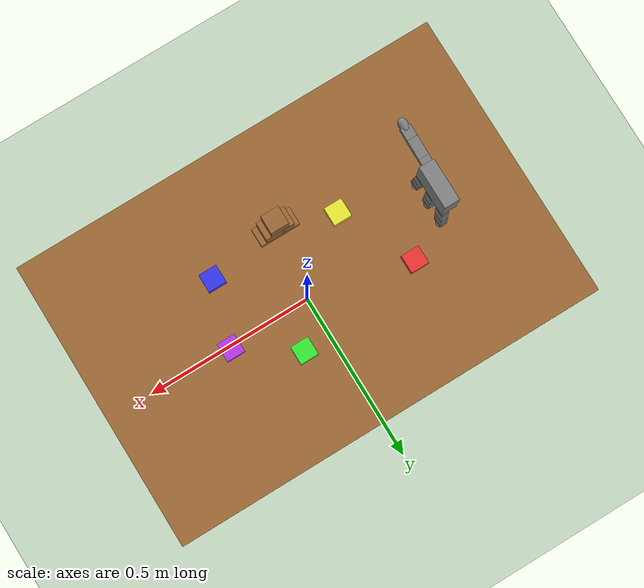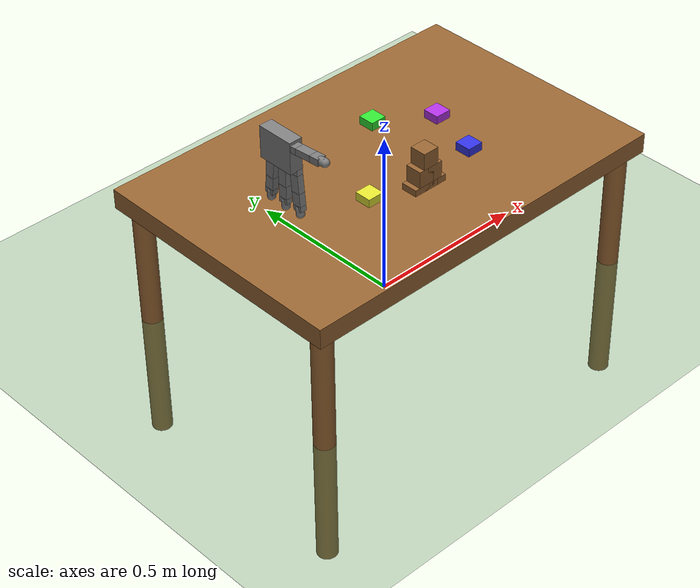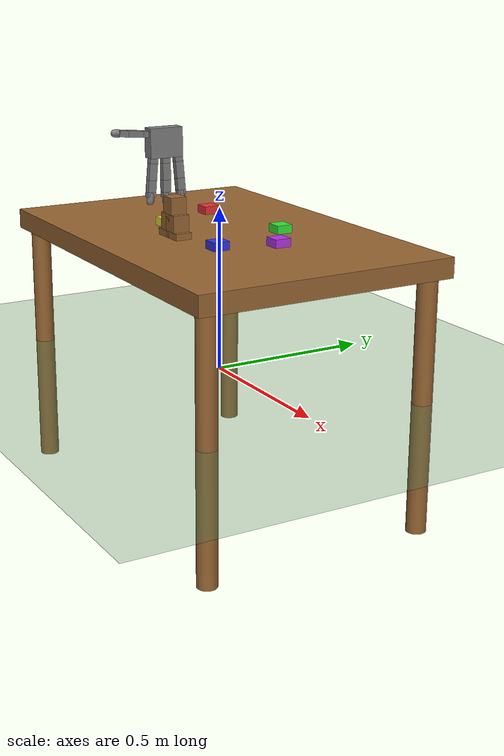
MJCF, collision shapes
<?xml version="1.0" encoding="UTF-8"?>
<mujoco>
  <compiler angle="radian" meshdir="assets" autolimits="true"/>

  <option cone="elliptic" impratio="10"/>
  <option gravity="0 0 -9.81"/>

  <default>
    <default class="allegro_right">
      <joint axis="0 1 0" damping=".1"/>
      <position kp="1"/>
      <geom density="800"/>

      <default class="visual">
        <geom type="mesh" contype="0" conaffinity="0" group="2" material="black"/>
        <default class="palm_visual">
          <geom mesh="base_link"/>
        </default>
        <default class="base_visual">
          <geom mesh="link_0.0"/>
        </default>
        <default class="proximal_visual">
          <geom mesh="link_1.0"/>
        </default>
        <default class="medial_visual">
          <geom mesh="link_2.0"/>
        </default>
        <default class="distal_visual">
          <geom mesh="link_3.0"/>
        </default>
        <default class="fingertip_visual">
          <geom pos="0 0 0.0267" material="white" mesh="link_3.0_tip"/>
        </default>
        <default class="thumbtip_visual">
          <geom pos="0 0 0.0423" material="white" mesh="link_15.0_tip"/>
        </default>
      </default>

      <default class="collision">
        <geom group="3" type="box" mass="0"/>
        <default class="palm_collision">
          <geom size="0.0204 0.0565 0.0475" pos="-0.0093 0 -0.0475"/>
        </default>
        <default class="base_collision">
          <geom size="0.0098 0.01375 0.0082" pos="0 0 0.0082"/>
          <default class="thumb_base_collision">
            <geom size="0.0179 0.017 0.02275" pos="-0.0179 0.009 0.0145"/>
          </default>
        </default>
        <default class="proximal_collision">
          <geom size="0.0098 0.01375 0.027" pos="0 0 0.027"/>
          <default class="thumb_proximal_collision">
            <geom size="0.0098 0.01375 0.00885" pos="0 0 0.00885"/>
          </default>
        </default>
        <default class="medial_collision">
          <geom size="0.0098 0.01375 0.0192" pos="0 0 0.0192"/>
          <default class="thumb_medial_collision">
            <geom size="0.0098 0.01375 0.0257" pos="0 0 0.0257"/>
          </default>
        </default>
        <default class="distal_collision">
          <geom size="0.0098 0.01375 0.008" pos="0 0 0.008"/>
          <default class="thumb_distal_collision">
            <geom size="0.0098 0.01375 0.0157" pos="0 0 0.0157"/>
          </default>
        </default>
        <default class="fingertip_collision">
          <geom type="capsule" size="0.012 0.01" pos="0 0 0.019"/>
          <default class="thumbtip_collision">
            <geom type="capsule" size="0.012 0.008" pos="0 0 0.035"/>
          </default>
        </default>
      </default>

      <default class="base">
        <joint axis="0 0 1" range="-0.47 0.47"/>
        <position ctrlrange="-0.47 0.47"/>
      </default>
      <default class="proximal">
        <joint range="-0.196 1.61"/>
        <position ctrlrange="-0.196 1.61"/>
      </default>
      <default class="medial">
        <joint range="-0.174 1.709"/>
        <position ctrlrange="-0.174 1.709"/>
      </default>
      <default class="distal">
        <joint range="-0.227 1.618"/>
        <position ctrlrange="-0.227 1.618"/>
      </default>
      <default class="thumb_base">
        <joint axis="-1 0 0" range="0.263 1.396"/>
        <position ctrlrange="0.263 1.396"/>
      </default>
      <default class="thumb_proximal">
        <joint axis="0 0 1" range="-0.105 1.163"/>
        <position ctrlrange="-0.105 1.163"/>
      </default>
      <default class="thumb_medial">
        <joint range="-0.189 1.644"/>
        <position ctrlrange="-0.189 1.644"/>
      </default>
      <default class="thumb_distal">
        <joint range="-0.162 1.719"/>
        <position ctrlrange="-0.162 1.719"/>
      </default>
    </default>
  </default>

  <asset>
    <material name="black" rgba="0.2 0.2 0.2 1"/>
    <material name="white" rgba="0.9 0.9 0.9 1"/>
    <material name="table_mat" rgba="0.6 0.4 0.2 1"/>
    <material name="block_red" rgba="0.9 0.2 0.2 1"/>
    <material name="block_blue" rgba="0.2 0.2 0.9 1"/>
    <material name="block_green" rgba="0.2 0.9 0.2 1"/>
    <material name="block_yellow" rgba="0.9 0.9 0.2 1"/>
    <material name="block_purple" rgba="0.7 0.2 0.9 1"/>
    <material name="ground_mat" rgba="0.3 0.5 0.3 1"/>

    <mesh file="base_link.stl"/>
    <mesh file="link_0.0.stl"/>
    <mesh file="link_1.0.stl"/>
    <mesh file="link_2.0.stl"/>
    <mesh file="link_3.0.stl"/>
    <mesh file="link_3.0_tip.stl"/>
    <mesh file="link_12.0_right.stl"/>
    <mesh file="link_13.0.stl"/>
    <mesh file="link_14.0.stl"/>
    <mesh file="link_15.0.stl"/>
    <mesh file="link_15.0_tip.stl"/>
  </asset>

  <worldbody>
    <!-- 地面 -->
    <body name="ground">
      <geom name="ground" type="plane" material="ground_mat" size="2 2 0.1" pos="0 0 0"/>
    </body>

    <!-- 桌子 -->
    <body name="table" pos="0 0 0">
      <geom name="table_top" type="box" material="table_mat" size="0.6 0.4 0.03" pos="0 0 0.4"/>
      <geom name="table_leg1" type="cylinder" material="table_mat" size="0.03 0.4" pos="0.55 0.35 0"/>
      <geom name="table_leg2" type="cylinder" material="table_mat" size="0.03 0.4" pos="0.55 -0.35 0"/>
      <geom name="table_leg3" type="cylinder" material="table_mat" size="0.03 0.4" pos="-0.55 0.35 0"/>
      <geom name="table_leg4" type="cylinder" material="table_mat" size="0.03 0.4" pos="-0.55 -0.35 0"/>
    </body>

    <!-- ========== 待抓取的方块（散落在桌子上）========== -->

    <!-- 方块1 (红色) - 散落在左侧 -->
    <body name="block1" pos="-0.25 0.1 0.43">
      <inertial pos="0 0 0" mass="0.02" diaginertia="1e-5 1e-5 1e-5"/>
      <geom name="block1_geom" type="box" material="block_red" size="0.025 0.025 0.025"/>
    </body>

    <!-- 方块2 (蓝色) - 散落在右侧 -->
    <body name="block2" pos="0.2 -0.12 0.43">
      <inertial pos="0 0 0" mass="0.02" diaginertia="1e-5 1e-5 1e-5"/>
      <geom name="block2_geom" type="box" material="block_blue" size="0.025 0.025 0.025"/>
    </body>

    <!-- 方块3 (绿色) - 散落在前方 -->
    <body name="block3" pos="0.1 0.15 0.43">
      <inertial pos="0 0 0" mass="0.02" diaginertia="1e-5 1e-5 1e-5"/>
      <geom name="block3_geom" type="box" material="block_green" size="0.025 0.025 0.025"/>
    </body>

    <!-- 方块4 (黄色) - 散落在后方 -->
    <body name="block4" pos="-0.15 -0.1 0.43">
      <inertial pos="0 0 0" mass="0.02" diaginertia="1e-5 1e-5 1e-5"/>
      <geom name="block4_geom" type="box" material="block_yellow" size="0.025 0.025 0.025"/>
    </body>

    <!-- 方块5 (紫色) - 散落在角落 -->
    <body name="block5" pos="0.25 0.05 0.43">
      <inertial pos="0 0 0" mass="0.02" diaginertia="1e-5 1e-5 1e-5"/>
      <geom name="block5_geom" type="box" material="block_purple" size="0.025 0.025 0.025"/>
    </body>

    <!-- ========== 金字塔目标区域 ========== -->
    <!-- 金字塔中心位置: (0, -0.15, 0.4) -->

    <!-- 金字塔底层 (3个方块) -->
    <!-- 底层左 -->
    <body name="pyramid_base_left" pos="-0.03 -0.15 0.425">
      <geom type="box" size="0.025 0.025 0.025" material="table_mat" contype="0" conaffinity="0"/>
    </body>

    <!-- 底层中 -->
    <body name="pyramid_base_mid" pos="0 -0.15 0.425">
      <geom type="box" size="0.025 0.025 0.025" material="table_mat" contype="0" conaffinity="0"/>
    </body>

    <!-- 底层右 -->
    <body name="pyramid_base_right" pos="0.03 -0.15 0.425">
      <geom type="box" size="0.025 0.025 0.025" material="table_mat" contype="0" conaffinity="0"/>
    </body>

    <!-- 金字塔中层 (2个方块) -->
    <!-- 中层左 -->
    <body name="pyramid_mid_left" pos="-0.015 -0.15 0.475">
      <geom type="box" size="0.025 0.025 0.025" material="table_mat" contype="0" conaffinity="0"/>
    </body>

    <!-- 中层右 -->
    <body name="pyramid_mid_right" pos="0.015 -0.15 0.475">
      <geom type="box" size="0.025 0.025 0.025" material="table_mat" contype="0" conaffinity="0"/>
    </body>

    <!-- 金字塔顶层 (1个方块) -->
    <!-- 顶层 -->
    <body name="pyramid_top" pos="0 -0.15 0.525">
      <geom type="box" size="0.025 0.025 0.025" material="table_mat" contype="0" conaffinity="0"/>
    </body>

    <!-- Wonik Allegro右手 - 从桌子边开始 -->
    <body name="palm" quat="0 1 0 0" childclass="allegro_right" pos="-0.35 0 0.6">
      <!-- 手掌朝下，手指自然下垂 -->
      <geom class="palm_visual" mesh="base_link"/>
      <geom class="palm_collision"/>

      <!-- First finger (食指) -->
      <body name="ff_base" pos="0 0.0435 -0.001542" quat="0.999048 -0.0436194 0 0">
        <joint name="ffj0" class="base"/>
        <geom class="base_visual"/>
        <geom class="base_collision"/>
        <body name="ff_proximal" pos="0 0 0.0164">
          <joint name="ffj1" class="proximal"/>
          <geom class="proximal_visual"/>
          <geom class="proximal_collision"/>
          <body name="ff_medial" pos="0 0 0.054">
            <joint name="ffj2" class="medial"/>
            <geom class="medial_visual"/>
            <geom class="medial_collision"/>
            <body name="ff_distal" pos="0 0 0.0384">
              <joint name="ffj3" class="distal"/>
              <geom class="distal_visual"/>
              <geom class="distal_collision"/>
              <body name="ff_tip">
                <geom class="fingertip_visual"/>
                <geom class="fingertip_collision"/>
              </body>
            </body>
          </body>
        </body>
      </body>

      <!-- Middle finger (中指) -->
      <body name="mf_base" pos="0 0 0.0007">
        <joint name="mfj0" class="base"/>
        <geom class="base_visual"/>
        <geom class="base_collision"/>
        <body name="mf_proximal" pos="0 0 0.0164">
          <joint name="mfj1" class="proximal"/>
          <geom class="proximal_visual"/>
          <geom class="proximal_collision"/>
          <body name="mf_medial" pos="0 0 0.054">
            <joint name="mfj2" class="medial"/>
            <geom class="medial_visual"/>
            <geom class="medial_collision"/>
            <body name="mf_distal" pos="0 0 0.0384">
              <joint name="mfj3" class="distal"/>
              <geom class="distal_visual"/>
              <geom class="distal_collision"/>
              <body name="mf_tip">
                <geom class="fingertip_visual"/>
                <geom class="fingertip_collision"/>
              </body>
            </body>
          </body>
        </body>
      </body>

      <!-- Ring finger (无名指) -->
      <body name="rf_base" pos="0 -0.0435 -0.001542" quat="0.999048 0.0436194 0 0">
        <joint name="rfj0" class="base"/>
        <geom class="base_visual"/>
        <geom class="base_collision"/>
        <body name="rf_proximal" pos="0 0 0.0164">
          <joint name="rfj1" class="proximal"/>
          <geom class="proximal_visual"/>
          <geom class="proximal_collision"/>
          <body name="rf_medial" pos="0 0 0.054">
            <joint name="rfj2" class="medial"/>
            <geom class="medial_visual"/>
            <geom class="medial_collision"/>
            <body name="rf_distal" pos="0 0 0.0384">
              <joint name="rfj3" class="distal"/>
              <geom class="distal_visual"/>
              <geom class="distal_collision"/>
              <body name="rf_tip">
                <geom class="fingertip_visual"/>
                <geom class="fingertip_collision"/>
              </body>
            </body>
          </body>
        </body>
      </body>

      <!-- Thumb (拇指) -->
      <body name="th_base" pos="-0.0182 0.019333 -0.045987" quat="0.477714 -0.521334 -0.521334 -0.477714">
        <joint name="thj0" class="thumb_base"/>
        <geom class="visual" mesh="link_12.0_right"/>
        <geom class="thumb_base_collision"/>
        <body name="th_proximal" pos="-0.027 0.005 0.0399">
          <joint name="thj1" class="thumb_proximal"/>
          <geom class="visual" mesh="link_13.0"/>
          <geom class="thumb_proximal_collision"/>
          <body name="th_medial" pos="0 0 0.0177">
            <joint name="thj2" class="thumb_medial"/>
            <geom class="visual" mesh="link_14.0"/>
            <geom class="thumb_medial_collision"/>
            <body name="th_distal" pos="0 0 0.0514">
              <joint name="thj3" class="thumb_distal"/>
              <geom class="visual" mesh="link_15.0"/>
              <geom class="thumb_distal_collision"/>
              <body name="th_tip">
                <geom class="thumbtip_visual"/>
                <geom class="thumbtip_collision"/>
              </body>
            </body>
          </body>
        </body>
      </body>
    </body>
  </worldbody>

  <contact>
    <exclude body1="palm" body2="ff_base"/>
    <exclude body1="palm" body2="mf_base"/>
    <exclude body1="palm" body2="rf_base"/>
    <exclude body1="palm" body2="th_base"/>
    <exclude body1="palm" body2="th_proximal"/>
  </contact>

  <actuator>
    <position name="ffa0" joint="ffj0" class="base"/>
    <position name="ffa1" joint="ffj1" class="proximal"/>
    <position name="ffa2" joint="ffj2" class="medial"/>
    <position name="ffa3" joint="ffj3" class="distal"/>
    <position name="mfa0" joint="mfj0" class="base"/>
    <position name="mfa1" joint="mfj1" class="proximal"/>
    <position name="mfa2" joint="mfj2" class="medial"/>
    <position name="mfa3" joint="mfj3" class="distal"/>
    <position name="rfa0" joint="rfj0" class="base"/>
    <position name="rfa1" joint="rfj1" class="proximal"/>
    <position name="rfa2" joint="rfj2" class="medial"/>
    <position name="rfa3" joint="rfj3" class="distal"/>
    <position name="tha0" joint="thj0" class="thumb_base"/>
    <position name="tha1" joint="thj1" class="thumb_proximal"/>
    <position name="tha2" joint="thj2" class="thumb_medial"/>
    <position name="tha3" joint="thj3" class="thumb_distal"/>
  </actuator>
</mujoco>
